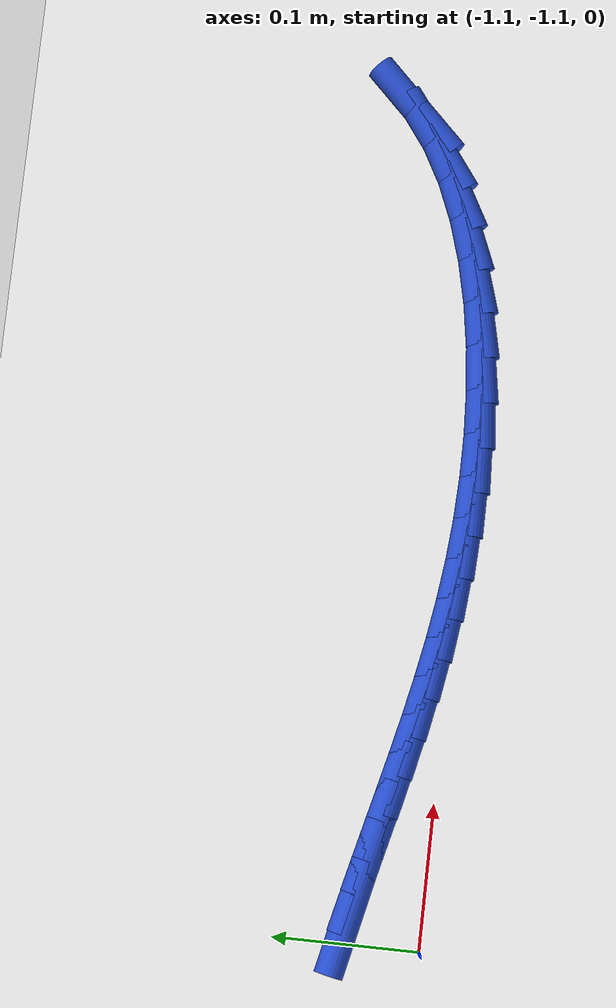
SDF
<sdf version="1.6">
 <world name="default">
  <model name="ground_plane">
   <static>1</static>
   <link name="link">
    <collision name="collision">
     <geometry><plane><normal>0 0 1</normal><size>100 100</size></plane></geometry>
     <surface><friction><ode><mu>100</mu><mu2>50</mu2></ode></friction></surface>
    </collision>
    <visual name="visual">
     <cast_shadows>0</cast_shadows>
     <geometry><plane><normal>0 0 1</normal><size>100 100</size></plane></geometry>
     <material>
      <script><uri>file://media/materials/scripts/gazebo.material</uri><name>Gazebo/WhiteGlow</name></script>
     </material>
    </visual>
   </link>
  </model>
  <model name="line">
   <link name="link_187">
    <pose>-1.081730794277894 -1.0496797959358404 0.01 0 1.57 -0.21851964286604184</pose>
    <collision name="collision">
     <geometry><cylinder><radius>0.01</radius><length>0.08</length></cylinder></geometry>
    </collision>
    <visual name="visual">
     <material>
      <script><name>Gazebo/Blue</name><uri>file://media/materials/scripts/gazebo.material</uri></script>
     </material>
     <geometry><cylinder><radius>0.01</radius><length>0.08</length></cylinder></geometry>
    </visual>
   </link>
   <link name="link_188">
    <pose>-1.0541884183320436 -1.055796008837761 0.01 0 1.57 -0.23240807048829526</pose>
    <collision name="collision">
     <geometry><cylinder><radius>0.01</radius><length>0.08</length></cylinder></geometry>
    </collision>
    <visual name="visual">
     <material>
      <script><name>Gazebo/Blue</name><uri>file://media/materials/scripts/gazebo.material</uri></script>
     </material>
     <geometry><cylinder><radius>0.01</radius><length>0.08</length></cylinder></geometry>
    </visual>
   </link>
   <link name="link_189">
    <pose>-1.0268057723069959 -1.0622770673637942 0.01 0 1.57 -0.23828157401958697</pose>
    <collision name="collision">
     <geometry><cylinder><radius>0.01</radius><length>0.08</length></cylinder></geometry>
    </collision>
    <visual name="visual">
     <material>
      <script><name>Gazebo/Blue</name><uri>file://media/materials/scripts/gazebo.material</uri></script>
     </material>
     <geometry><cylinder><radius>0.01</radius><length>0.08</length></cylinder></geometry>
    </visual>
   </link>
   <link name="link_190">
    <pose>-0.9995624042839405 -1.0688943760364709 0.01 0 1.57 -0.23607035523447947</pose>
    <collision name="collision">
     <geometry><cylinder><radius>0.01</radius><length>0.08</length></cylinder></geometry>
    </collision>
    <visual name="visual">
     <material>
      <script><name>Gazebo/Blue</name><uri>file://media/materials/scripts/gazebo.material</uri></script>
     </material>
     <geometry><cylinder><radius>0.01</radius><length>0.08</length></cylinder></geometry>
    </visual>
   </link>
   <link name="link_191">
    <pose>-0.9724378623440676 -1.075419339378322 0.01 0 1.57 -0.22588622852125714</pose>
    <collision name="collision">
     <geometry><cylinder><radius>0.01</radius><length>0.08</length></cylinder></geometry>
    </collision>
    <visual name="visual">
     <material>
      <script><name>Gazebo/Blue</name><uri>file://media/materials/scripts/gazebo.material</uri></script>
     </material>
     <geometry><cylinder><radius>0.01</radius><length>0.08</length></cylinder></geometry>
    </visual>
   </link>
   <link name="link_192">
    <pose>-0.9453991966273965 -1.0816330468103077 0.01 0 1.57 -0.20905712854369746</pose>
    <collision name="collision">
     <geometry><cylinder><radius>0.01</radius><length>0.08</length></cylinder></geometry>
    </collision>
    <visual name="visual">
     <material>
      <script><name>Gazebo/Blue</name><uri>file://media/materials/scripts/gazebo.material</uri></script>
     </material>
     <geometry><cylinder><radius>0.01</radius><length>0.08</length></cylinder></geometry>
    </visual>
   </link>
   <link name="link_193">
    <pose>-0.9183394103409893 -1.087373968166277 0.01 0 1.57 -0.18622925805984833</pose>
    <collision name="collision">
     <geometry><cylinder><radius>0.01</radius><length>0.08</length></cylinder></geometry>
    </collision>
    <visual name="visual">
     <material>
      <script><name>Gazebo/Blue</name><uri>file://media/materials/scripts/gazebo.material</uri></script>
     </material>
     <geometry><cylinder><radius>0.01</radius><length>0.08</length></cylinder></geometry>
    </visual>
   </link>
   <link name="link_194">
    <pose>-0.891124338697118 -1.0925016262892484 0.01 0 1.57 -0.15770575361633066</pose>
    <collision name="collision">
     <geometry><cylinder><radius>0.01</radius><length>0.08</length></cylinder></geometry>
    </collision>
    <visual name="visual">
     <material>
      <script><name>Gazebo/Blue</name><uri>file://media/materials/scripts/gazebo.material</uri></script>
     </material>
     <geometry><cylinder><radius>0.01</radius><length>0.08</length></cylinder></geometry>
    </visual>
   </link>
   <link name="link_195">
    <pose>-0.863619775552492 -1.0968755760694704 0.01 0 1.57 -0.12395883839099592</pose>
    <collision name="collision">
     <geometry><cylinder><radius>0.01</radius><length>0.08</length></cylinder></geometry>
    </collision>
    <visual name="visual">
     <material>
      <script><name>Gazebo/Blue</name><uri>file://media/materials/scripts/gazebo.material</uri></script>
     </material>
     <geometry><cylinder><radius>0.01</radius><length>0.08</length></cylinder></geometry>
    </visual>
   </link>
   <link name="link_196">
    <pose>-0.8356915147638204 -1.1003553723971933 0.01 0 1.57 -0.08562818698890422</pose>
    <collision name="collision">
     <geometry><cylinder><radius>0.01</radius><length>0.08</length></cylinder></geometry>
    </collision>
    <visual name="visual">
     <material>
      <script><name>Gazebo/Blue</name><uri>file://media/materials/scripts/gazebo.material</uri></script>
     </material>
     <geometry><cylinder><radius>0.01</radius><length>0.08</length></cylinder></geometry>
    </visual>
   </link>
   <link name="link_197">
    <pose>-0.807205350187813 -1.1028005701626669 0.01 0 1.57 -0.04350335106132029</pose>
    <collision name="collision">
     <geometry><cylinder><radius>0.01</radius><length>0.08</length></cylinder></geometry>
    </collision>
    <visual name="visual">
     <material>
      <script><name>Gazebo/Blue</name><uri>file://media/materials/scripts/gazebo.material</uri></script>
     </material>
     <geometry><cylinder><radius>0.01</radius><length>0.08</length></cylinder></geometry>
    </visual>
   </link>
   <link name="link_198">
    <pose>-0.7780270756811788 -1.1040707242561407 0.01 0 1.57 0.0015139617939951301</pose>
    <collision name="collision">
     <geometry><cylinder><radius>0.01</radius><length>0.08</length></cylinder></geometry>
    </collision>
    <visual name="visual">
     <material>
      <script><name>Gazebo/Blue</name><uri>file://media/materials/scripts/gazebo.material</uri></script>
     </material>
     <geometry><cylinder><radius>0.01</radius><length>0.08</length></cylinder></geometry>
    </visual>
   </link>
   <link name="link_199">
    <pose>-0.7480265596049503 -1.1040253045862993 0.01 0 1.57 0.04900759850572936</pose>
    <collision name="collision">
     <geometry><cylinder><radius>0.01</radius><length>0.08</length></cylinder></geometry>
    </collision>
    <visual name="visual">
     <material>
      <script><name>Gazebo/Blue</name><uri>file://media/materials/scripts/gazebo.material</uri></script>
     </material>
     <geometry><cylinder><radius>0.01</radius><length>0.08</length></cylinder></geometry>
    </visual>
   </link>
   <link name="link_200">
    <pose>-0.7173114090767466 -1.1025188225662743 0.01 0 1.57 0.10046459396752942</pose>
    <collision name="collision">
     <geometry><cylinder><radius>0.01</radius><length>0.08</length></cylinder></geometry>
    </collision>
    <visual name="visual">
     <material>
      <script><name>Gazebo/Blue</name><uri>file://media/materials/scripts/gazebo.material</uri></script>
     </material>
     <geometry><cylinder><radius>0.01</radius><length>0.08</length></cylinder></geometry>
    </visual>
   </link>
   <link name="link_201">
    <pose>-0.6863539069241175 -1.099398183601189 0.01 0 1.57 0.1579269200544149</pose>
    <collision name="collision">
     <geometry><cylinder><radius>0.01</radius><length>0.08</length></cylinder></geometry>
    </collision>
    <visual name="visual">
     <material>
      <script><name>Gazebo/Blue</name><uri>file://media/materials/scripts/gazebo.material</uri></script>
     </material>
     <geometry><cylinder><radius>0.01</radius><length>0.08</length></cylinder></geometry>
    </visual>
   </link>
   <link name="link_202">
    <pose>-0.6556572637401961 -1.0945096480385834 0.01 0 1.57 0.2237089420583956</pose>
    <collision name="collision">
     <geometry><cylinder><radius>0.01</radius><length>0.08</length></cylinder></geometry>
    </collision>
    <visual name="visual">
     <material>
      <script><name>Gazebo/Blue</name><uri>file://media/materials/scripts/gazebo.material</uri></script>
     </material>
     <geometry><cylinder><radius>0.01</radius><length>0.08</length></cylinder></geometry>
    </visual>
   </link>
   <link name="link_203">
    <pose>-0.6257246901181153 -1.087699476225996 0.01 0 1.57 0.3005836056282257</pose>
    <collision name="collision">
     <geometry><cylinder><radius>0.01</radius><length>0.08</length></cylinder></geometry>
    </collision>
    <visual name="visual">
     <material>
      <script><name>Gazebo/Blue</name><uri>file://media/materials/scripts/gazebo.material</uri></script>
     </material>
     <geometry><cylinder><radius>0.01</radius><length>0.08</length></cylinder></geometry>
    </visual>
   </link>
   <link name="link_204">
    <pose>-0.597059396651008 -1.0788139285109657 0.01 0 1.57 0.3918886098062051</pose>
    <collision name="collision">
     <geometry><cylinder><radius>0.01</radius><length>0.08</length></cylinder></geometry>
    </collision>
    <visual name="visual">
     <material>
      <script><name>Gazebo/Blue</name><uri>file://media/materials/scripts/gazebo.material</uri></script>
     </material>
     <geometry><cylinder><radius>0.01</radius><length>0.08</length></cylinder></geometry>
    </visual>
   </link>
   <link name="link_205">
    <pose>-0.5701645939320069 -1.0676992652410313 0.01 0 1.57 0.5014674076786084</pose>
    <collision name="collision">
     <geometry><cylinder><radius>0.01</radius><length>0.08</length></cylinder></geometry>
    </collision>
    <visual name="visual">
     <material>
      <script><name>Gazebo/Blue</name><uri>file://media/materials/scripts/gazebo.material</uri></script>
     </material>
     <geometry><cylinder><radius>0.01</radius><length>0.08</length></cylinder></geometry>
    </visual>
   </link>
   <link name="link_206">
    <pose>-0.5455434925542456 -1.0542017467637328 0.01 0 1.57 0.6331964522948565</pose>
    <collision name="collision">
     <geometry><cylinder><radius>0.01</radius><length>0.08</length></cylinder></geometry>
    </collision>
    <visual name="visual">
     <material>
      <script><name>Gazebo/Blue</name><uri>file://media/materials/scripts/gazebo.material</uri></script>
     </material>
     <geometry><cylinder><radius>0.01</radius><length>0.08</length></cylinder></geometry>
    </visual>
   </link>
   <link name="link_207">
    <pose>-0.5236993031108566 -1.0381676334266086 0.01 0 1.57 0.7896992181744722</pose>
    <collision name="collision">
     <geometry><cylinder><radius>0.01</radius><length>0.08</length></cylinder></geometry>
    </collision>
    <visual name="visual">
     <material>
      <script><name>Gazebo/Blue</name><uri>file://media/materials/scripts/gazebo.material</uri></script>
     </material>
     <geometry><cylinder><radius>0.01</radius><length>0.08</length></cylinder></geometry>
    </visual>
   </link>
  </model>
 </world>
</sdf>
